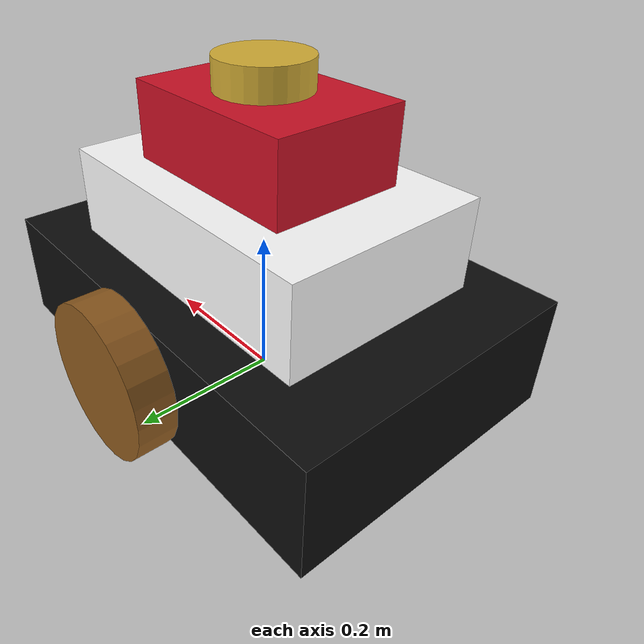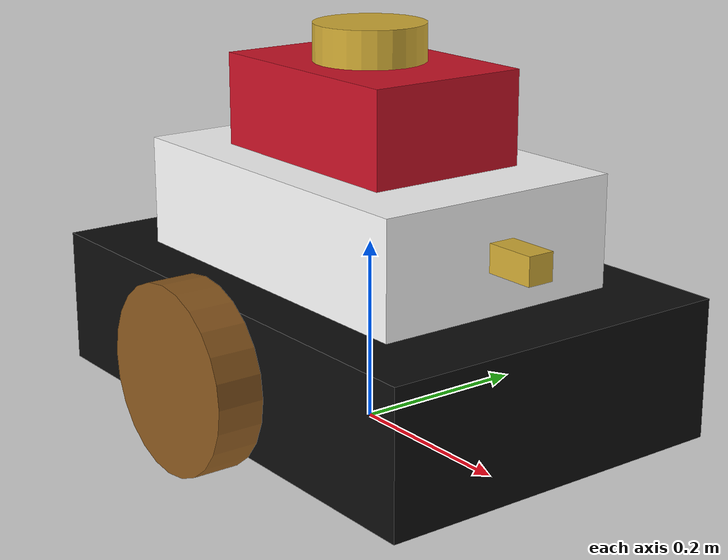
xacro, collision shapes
<?xml version="1.0"?>
<robot name="two_wheel_pyramid_robot" xmlns:xacro="http://www.ros.org/wiki/xacro">
<xacro:include filename="$(find my_robot_description)/urdf/robot.gazebo"/>

<xacro:arg name="mesh_path" default="package://my_robot_description/meshes/"/>

  <!-- PYRAMID CHASSIS - 3 stacked steps, Egyptian flag color order  -->
  <!-- (red bottom, white middle, black top - widest to narrowest)   -->

  <!-- Step 1 - base / bottom step (RED) -->
  <xacro:property name="step1_length" value="0.6"/>
  <xacro:property name="step1_width" value="0.4"/>
  <xacro:property name="step1_height" value="0.15"/>
  <xacro:property name="step1_mass" value="3.0"/>

  <!-- Step 2 - middle step (WHITE) -->
  <xacro:property name="step2_length" value="0.42"/>
  <xacro:property name="step2_width" value="0.28"/>
  <xacro:property name="step2_height" value="0.12"/>
  <xacro:property name="step2_mass" value="1.5"/>

  <!-- Step 3 - top step (BLACK) -->
  <xacro:property name="step3_length" value="0.26"/>
  <xacro:property name="step3_width" value="0.18"/>
  <xacro:property name="step3_height" value="0.10"/>
  <xacro:property name="step3_mass" value="0.8"/>

  <!-- Colors -->
  <xacro:property name="color_red" value="0.80 0.07 0.15 1.0"/>     <!-- Egyptian flag red -->
  <xacro:property name="color_white" value="1.0 1.0 1.0 1.0"/>       <!-- Egyptian flag white -->
  <xacro:property name="color_black" value="0.05 0.05 0.05 1.0"/>    <!-- Egyptian flag black -->
  <xacro:property name="color_gold" value="0.83 0.68 0.21 1.0"/>     <!-- golden eagle accent -->
  <xacro:property name="color_wheel" value="0.55 0.35 0.12 1.0"/>    <!-- antique bronze, complements the gold -->

  <!-- Wheels -->
  <xacro:property name="wheel_radius" value="0.1"/>
  <xacro:property name="wheel_width" value="0.05"/>
  <xacro:property name="wheel_mass" value="0.5"/>
  <xacro:property name="wheel_y_offset" value="0.23"/>

  <link name="base_footprint"/>

  <joint name="base_footprint_joint" type="fixed">
    <parent link="base_footprint"/>
    <child link="base_link"/>
    <origin xyz="0 0 ${wheel_radius}" rpy="0 0 0"/>
  </joint>

  <!-- ============== STEP 1 (base_link) - RED ============== -->
  <link name="base_link">
    <visual>
      <geometry>
        <box size="${step1_length} ${step1_width} ${step1_height}"/>
      </geometry>
      <material name="step1_red">
        <color rgba="${color_black}"/>
      </material>
    </visual>
    <collision>
      <geometry>
        <box size="${step1_length} ${step1_width} ${step1_height}"/>
      </geometry>
    </collision>
    <inertial>
      <mass value="${step1_mass}"/>
      <origin xyz="0 0 0" rpy="0 0 0"/>
      <inertia ixx="${(1/12) * step1_mass * (step1_width*step1_width + step1_height*step1_height)}" ixy="0.0" ixz="0.0"
               iyy="${(1/12) * step1_mass * (step1_length*step1_length + step1_height*step1_height)}" iyz="0.0"
               izz="${(1/12) * step1_mass * (step1_length*step1_length + step1_width*step1_width)}"/>
    </inertial>
  </link>

  <!-- ============== STEP 2 (middle_step_link) - WHITE ============== -->
  <joint name="middle_step_joint" type="fixed">
    <parent link="base_link"/>
    <child link="middle_step_link"/>
    <origin xyz="0 0 ${step1_height/2 + step2_height/2}" rpy="0 0 0"/>
  </joint>

  <link name="middle_step_link">
    <visual>
      <geometry>
        <box size="${step2_length} ${step2_width} ${step2_height}"/>
      </geometry>
      <material name="step2_white">
        <color rgba="${color_white}"/>
      </material>
    </visual>
    <collision>
      <geometry>
        <box size="${step2_length} ${step2_width} ${step2_height}"/>
      </geometry>
    </collision>
    <inertial>
      <mass value="${step2_mass}"/>
      <origin xyz="0 0 0" rpy="0 0 0"/>
      <inertia ixx="${(1/12) * step2_mass * (step2_width*step2_width + step2_height*step2_height)}" ixy="0.0" ixz="0.0"
               iyy="${(1/12) * step2_mass * (step2_length*step2_length + step2_height*step2_height)}" iyz="0.0"
               izz="${(1/12) * step2_mass * (step2_length*step2_length + step2_width*step2_width)}"/>
    </inertial>
  </link>

  <!-- ============== STEP 3 (top_step_link) - BLACK ============== -->
  <joint name="top_step_joint" type="fixed">
    <parent link="middle_step_link"/>
    <child link="top_step_link"/>
    <origin xyz="0 0 ${step2_height/2 + step3_height/2}" rpy="0 0 0"/>
  </joint>

  <link name="top_step_link">
    <visual>
      <geometry>
        <box size="${step3_length} ${step3_width} ${step3_height}"/>
      </geometry>
      <material name="step3_black">
        <color rgba="${color_red}"/>
      </material>
    </visual>
    <collision>
      <geometry>
        <box size="${step3_length} ${step3_width} ${step3_height}"/>
      </geometry>
    </collision>
    <inertial>
      <mass value="${step3_mass}"/>
      <origin xyz="0 0 0" rpy="0 0 0"/>
      <inertia ixx="${(1/12) * step3_mass * (step3_width*step3_width + step3_height*step3_height)}" ixy="0.0" ixz="0.0"
               iyy="${(1/12) * step3_mass * (step3_length*step3_length + step3_height*step3_height)}" iyz="0.0"
               izz="${(1/12) * step3_mass * (step3_length*step3_length + step3_width*step3_width)}"/>
    </inertial>
  </link>

  <!-- CAMERA - mounted on the MIDDLE (white) step, colored GOLD     -->
  <link name="camera_link">
    <visual>
      <origin xyz="0 0 0" rpy="0 0 0"/>
      <geometry>
        <mesh filename="$(arg mesh_path)zed.stl"/>
      </geometry>
      <material name="camera_gold">
        <color rgba="${color_gold}"/>
      </material>
    </visual>
    <collision>
      <origin xyz="0 0 0" rpy="0 0 0"/>
      <geometry>
        <box size="0.08 0.03 0.03"/>
      </geometry>
    </collision>
    <inertial>
      <mass value="0.1"/>
      <origin xyz="0 0 0" rpy="0 0 0"/>
      <inertia ixx="0.00005" ixy="0.0" ixz="0.0"
               iyy="0.00005" iyz="0.0"
               izz="0.00005"/>
    </inertial>
  </link>

  <joint name="camera_joint" type="fixed">
    <parent link="middle_step_link"/>
    <child link="camera_link"/>
    <origin xyz="${step2_length/2 + 0.016} 0 0" rpy="0 0 0"/>
  </joint>

  <link name="camera_optical_link"/>

  <joint name="camera_optical_joint" type="fixed">
    <parent link="camera_link"/>
    <child link="camera_optical_link"/>
    <origin xyz="0 0 0" rpy="-1.5708 0 -1.5708"/>
  </joint>

  <!-- LIDAR - mounted on TOP of the top (black) step, colored GOLD  -->
  <link name="lidar_link">
    <visual>
      <origin xyz="0 0 0" rpy="0 0 0"/>
      <geometry>
        <mesh filename="$(arg mesh_path)lidar.STL"/>
      </geometry>
      <material name="lidar_gold">
        <color rgba="${color_gold}"/>
      </material>
    </visual>
    <collision>
      <origin xyz="0 0 0" rpy="0 0 0"/>
      <geometry>
        <cylinder radius="0.06" length="0.04"/>
      </geometry>
    </collision>
    <inertial>
      <mass value="0.2"/>
      <origin xyz="0 0 0" rpy="0 0 0"/>
      <inertia ixx="0.0001" ixy="0.0" ixz="0.0"
               iyy="0.0001" iyz="0.0"
               izz="0.0001"/>
    </inertial>
  </link>

  <joint name="lidar_joint" type="fixed">
    <parent link="top_step_link"/>
    <child link="lidar_link"/>
    <origin xyz="0 0 ${step3_height/2 + 0.02}" rpy="0 0 0"/>
  </joint>

  <!-- WHEELS - 2 wheels (differential drive), antique bronze color  -->
  <xacro:macro name="wheel" params="prefix y_reflect">
    <joint name="${prefix}_wheel_joint" type="continuous">
      <parent link="base_link"/>
      <child link="${prefix}_wheel_link"/>
      <origin xyz="0 ${y_reflect * wheel_y_offset} 0" rpy="0 0 0"/>
      <axis xyz="0 1 0"/>
    </joint>

    <link name="${prefix}_wheel_link">
      <visual>
        <origin xyz="0 0 0" rpy="${pi/2} 0 0"/>
        <geometry>
          <cylinder radius="${wheel_radius}" length="${wheel_width}"/>
        </geometry>
        <material name="wheel_bronze">
          <color rgba="${color_wheel}"/>
        </material>
      </visual>
      <collision>
        <origin xyz="0 0 0" rpy="${pi/2} 0 0"/>
        <geometry>
          <cylinder radius="${wheel_radius}" length="${wheel_width}"/>
        </geometry>
      </collision>
      <inertial>
        <mass value="${wheel_mass}"/>
        <origin xyz="0 0 0" rpy="${pi/2} 0 0"/>
        <inertia ixx="${(1/12) * wheel_mass * (3*wheel_radius*wheel_radius + wheel_width*wheel_width)}" ixy="0.0" ixz="0.0"
                 iyy="${(1/12) * wheel_mass * (3*wheel_radius*wheel_radius + wheel_width*wheel_width)}" iyz="0.0"
                 izz="${(1/2) * wheel_mass * (wheel_radius*wheel_radius)}"/>
      </inertial>
    </link>
  </xacro:macro>

  <xacro:wheel prefix="left"  y_reflect="1"/>
  <xacro:wheel prefix="right" y_reflect="-1"/>

</robot>
